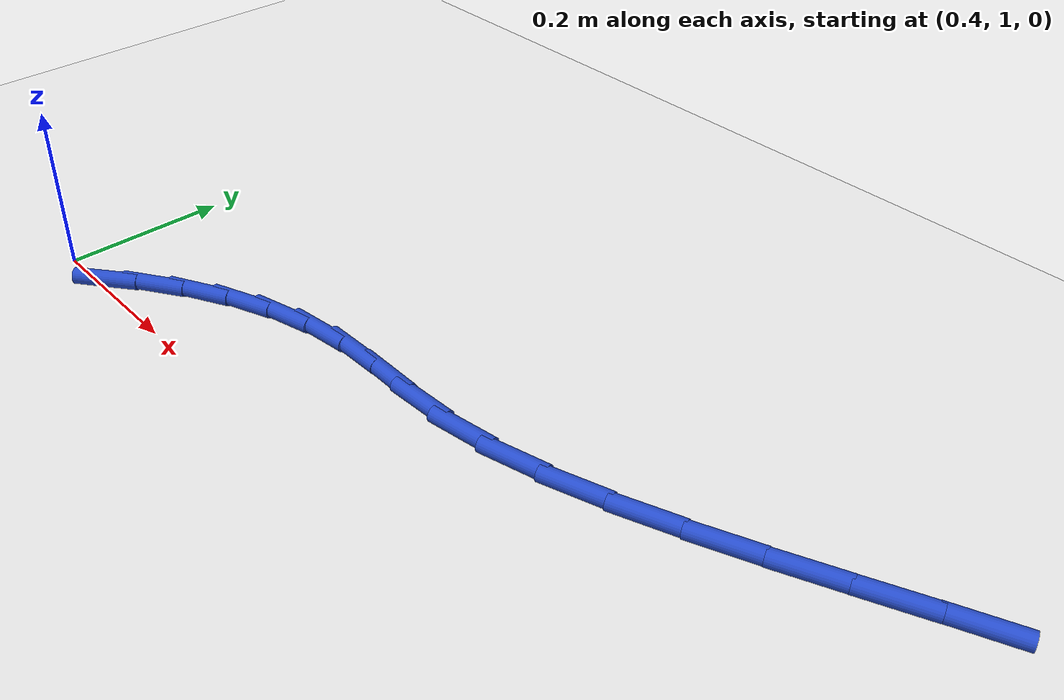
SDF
<sdf version="1.6">
 <world name="default">
  <model name="ground_plane">
   <static>1</static>
   <link name="link">
    <collision name="collision">
     <geometry><plane><normal>0 0 1</normal><size>100 100</size></plane></geometry>
     <surface><friction><ode><mu>100</mu><mu2>50</mu2></ode></friction></surface>
    </collision>
    <visual name="visual">
     <cast_shadows>0</cast_shadows>
     <geometry><plane><normal>0 0 1</normal><size>100 100</size></plane></geometry>
     <material>
      <script><uri>file://media/materials/scripts/gazebo.material</uri><name>Gazebo/WhiteGlow</name></script>
     </material>
    </visual>
   </link>
  </model>
  <model name="line">
   <link name="link_18">
    <pose>0.47665209910216005 1.0057898059853838 0.01 0 1.57 0.6784322526604135</pose>
    <collision name="collision">
     <geometry><cylinder><radius>0.01</radius><length>0.08</length></cylinder></geometry>
    </collision>
    <visual name="visual">
     <material>
      <script><name>Gazebo/Blue</name><uri>file://media/materials/scripts/gazebo.material</uri></script>
     </material>
     <geometry><cylinder><radius>0.01</radius><length>0.08</length></cylinder></geometry>
    </visual>
   </link>
   <link name="link_19">
    <pose>0.5236488275562862 1.0436725391014692 0.01 0 1.57 0.5921055256599644</pose>
    <collision name="collision">
     <geometry><cylinder><radius>0.01</radius><length>0.08</length></cylinder></geometry>
    </collision>
    <visual name="visual">
     <material>
      <script><name>Gazebo/Blue</name><uri>file://media/materials/scripts/gazebo.material</uri></script>
     </material>
     <geometry><cylinder><radius>0.01</radius><length>0.08</length></cylinder></geometry>
    </visual>
   </link>
   <link name="link_20">
    <pose>0.5724482367284659 1.0764954803327635 0.01 0 1.57 0.49405044042973656</pose>
    <collision name="collision">
     <geometry><cylinder><radius>0.01</radius><length>0.08</length></cylinder></geometry>
    </collision>
    <visual name="visual">
     <material>
      <script><name>Gazebo/Blue</name><uri>file://media/materials/scripts/gazebo.material</uri></script>
     </material>
     <geometry><cylinder><radius>0.01</radius><length>0.08</length></cylinder></geometry>
    </visual>
   </link>
   <link name="link_21">
    <pose>0.6230092670637092 1.1037277646554435 0.01 0 1.57 0.3837689869714253</pose>
    <collision name="collision">
     <geometry><cylinder><radius>0.01</radius><length>0.08</length></cylinder></geometry>
    </collision>
    <visual name="visual">
     <material>
      <script><name>Gazebo/Blue</name><uri>file://media/materials/scripts/gazebo.material</uri></script>
     </material>
     <geometry><cylinder><radius>0.01</radius><length>0.08</length></cylinder></geometry>
    </visual>
   </link>
   <link name="link_22">
    <pose>0.6752908590070251 1.1248385270456855 0.01 0 1.57 0.261791501165685</pose>
    <collision name="collision">
     <geometry><cylinder><radius>0.01</radius><length>0.08</length></cylinder></geometry>
    </collision>
    <visual name="visual">
     <material>
      <script><name>Gazebo/Blue</name><uri>file://media/materials/scripts/gazebo.material</uri></script>
     </material>
     <geometry><cylinder><radius>0.01</radius><length>0.08</length></cylinder></geometry>
    </visual>
   </link>
   <link name="link_23">
    <pose>0.7292519530034232 1.1392969024796649 0.01 0 1.57 0.13022163204290887</pose>
    <collision name="collision">
     <geometry><cylinder><radius>0.01</radius><length>0.08</length></cylinder></geometry>
    </collision>
    <visual name="visual">
     <material>
      <script><name>Gazebo/Blue</name><uri>file://media/materials/scripts/gazebo.material</uri></script>
     </material>
     <geometry><cylinder><radius>0.01</radius><length>0.08</length></cylinder></geometry>
    </visual>
   </link>
   <link name="link_24">
    <pose>0.7848522628605568 1.146578471668751 0.01 0 1.57 0.01935499480825221</pose>
    <collision name="collision">
     <geometry><cylinder><radius>0.01</radius><length>0.08</length></cylinder></geometry>
    </collision>
    <visual name="visual">
     <material>
      <script><name>Gazebo/Blue</name><uri>file://media/materials/scripts/gazebo.material</uri></script>
     </material>
     <geometry><cylinder><radius>0.01</radius><length>0.08</length></cylinder></geometry>
    </visual>
   </link>
   <link name="link_25">
    <pose>0.842235125376424 1.1476892553840115 0.01 0 1.57 -0.009293642352736584</pose>
    <collision name="collision">
     <geometry><cylinder><radius>0.01</radius><length>0.08</length></cylinder></geometry>
    </collision>
    <visual name="visual">
     <material>
      <script><name>Gazebo/Blue</name><uri>file://media/materials/scripts/gazebo.material</uri></script>
     </material>
     <geometry><cylinder><radius>0.01</radius><length>0.08</length></cylinder></geometry>
    </visual>
   </link>
   <link name="link_26">
    <pose>0.9019636734911735 1.1471341436374947 0.01 0 1.57 0.044163119642336775</pose>
    <collision name="collision">
     <geometry><cylinder><radius>0.01</radius><length>0.08</length></cylinder></geometry>
    </collision>
    <visual name="visual">
     <material>
      <script><name>Gazebo/Blue</name><uri>file://media/materials/scripts/gazebo.material</uri></script>
     </material>
     <geometry><cylinder><radius>0.01</radius><length>0.08</length></cylinder></geometry>
    </visual>
   </link>
   <link name="link_27">
    <pose>0.9646594417916322 1.1499047858577112 0.01 0 1.57 0.1553966301238088</pose>
    <collision name="collision">
     <geometry><cylinder><radius>0.01</radius><length>0.08</length></cylinder></geometry>
    </collision>
    <visual name="visual">
     <material>
      <script><name>Gazebo/Blue</name><uri>file://media/materials/scripts/gazebo.material</uri></script>
     </material>
     <geometry><cylinder><radius>0.01</radius><length>0.08</length></cylinder></geometry>
    </visual>
   </link>
   <link name="link_28">
    <pose>1.0307669404137632 1.1602611652202814 0.01 0 1.57 0.25397180481105475</pose>
    <collision name="collision">
     <geometry><cylinder><radius>0.01</radius><length>0.08</length></cylinder></geometry>
    </collision>
    <visual name="visual">
     <material>
      <script><name>Gazebo/Blue</name><uri>file://media/materials/scripts/gazebo.material</uri></script>
     </material>
     <geometry><cylinder><radius>0.01</radius><length>0.08</length></cylinder></geometry>
    </visual>
   </link>
   <link name="link_29">
    <pose>1.0996874215360397 1.178151337159617 0.01 0 1.57 0.32446021368617206</pose>
    <collision name="collision">
     <geometry><cylinder><radius>0.01</radius><length>0.08</length></cylinder></geometry>
    </collision>
    <visual name="visual">
     <material>
      <script><name>Gazebo/Blue</name><uri>file://media/materials/scripts/gazebo.material</uri></script>
     </material>
     <geometry><cylinder><radius>0.01</radius><length>0.08</length></cylinder></geometry>
    </visual>
   </link>
   <link name="link_30">
    <pose>1.1704412665717234 1.201949166176295 0.01 0 1.57 0.37367658759167166</pose>
    <collision name="collision">
     <geometry><cylinder><radius>0.01</radius><length>0.08</length></cylinder></geometry>
    </collision>
    <visual name="visual">
     <material>
      <script><name>Gazebo/Blue</name><uri>file://media/materials/scripts/gazebo.material</uri></script>
     </material>
     <geometry><cylinder><radius>0.01</radius><length>0.08</length></cylinder></geometry>
    </visual>
   </link>
   <link name="link_31">
    <pose>1.242048297538048 1.2300262047106405 0.01 0 1.57 0.4059963233284557</pose>
    <collision name="collision">
     <geometry><cylinder><radius>0.01</radius><length>0.08</length></cylinder></geometry>
    </collision>
    <visual name="visual">
     <material>
      <script><name>Gazebo/Blue</name><uri>file://media/materials/scripts/gazebo.material</uri></script>
     </material>
     <geometry><cylinder><radius>0.01</radius><length>0.08</length></cylinder></geometry>
    </visual>
   </link>
   <link name="link_32">
    <pose>1.3135283364522452 1.260754005202978 0.01 0 1.57 0.42382632703121975</pose>
    <collision name="collision">
     <geometry><cylinder><radius>0.01</radius><length>0.08</length></cylinder></geometry>
    </collision>
    <visual name="visual">
     <material>
      <script><name>Gazebo/Blue</name><uri>file://media/materials/scripts/gazebo.material</uri></script>
     </material>
     <geometry><cylinder><radius>0.01</radius><length>0.08</length></cylinder></geometry>
    </visual>
   </link>
   <link name="link_33">
    <pose>1.383901205331549 1.292504120093633 0.01 0 1.57 0.4279024344342704</pose>
    <collision name="collision">
     <geometry><cylinder><radius>0.01</radius><length>0.08</length></cylinder></geometry>
    </collision>
    <visual name="visual">
     <material>
      <script><name>Gazebo/Blue</name><uri>file://media/materials/scripts/gazebo.material</uri></script>
     </material>
     <geometry><cylinder><radius>0.01</radius><length>0.08</length></cylinder></geometry>
    </visual>
   </link>
   <link name="link_34">
    <pose>1.452186726193192 1.3236481018229298 0.01 0 1.57 0.4172460053779531</pose>
    <collision name="collision">
     <geometry><cylinder><radius>0.01</radius><length>0.08</length></cylinder></geometry>
    </collision>
    <visual name="visual">
     <material>
      <script><name>Gazebo/Blue</name><uri>file://media/materials/scripts/gazebo.material</uri></script>
     </material>
     <geometry><cylinder><radius>0.01</radius><length>0.08</length></cylinder></geometry>
    </visual>
   </link>
  </model>
 </world>
</sdf>
